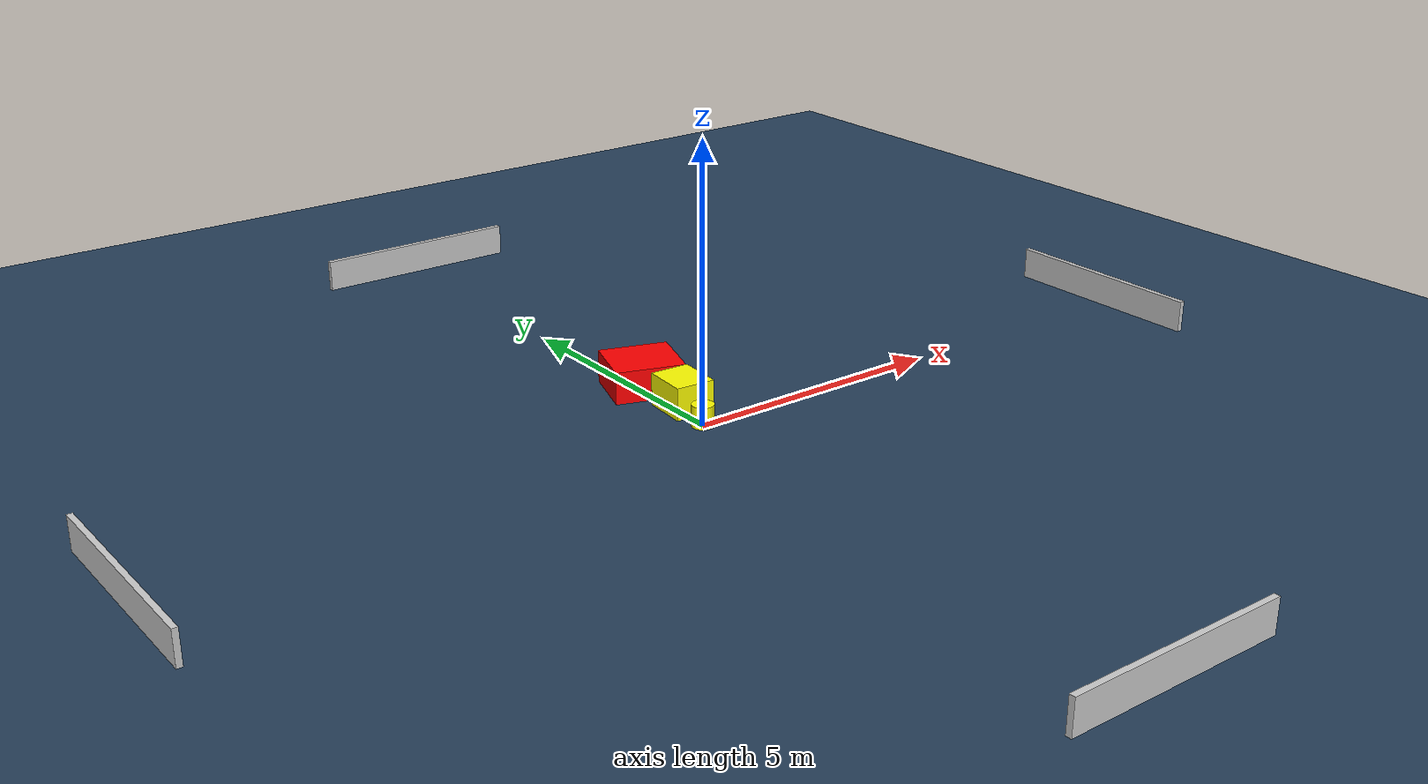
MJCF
<?xml version="1.0" ?>
<mujoco model="generated_environment">
  <option timestep="0.01" integrator="RK4" cone="elliptic"/>
  <default>
    <geom density="1"/>
  </default>
  <asset>
    <texture builtin="gradient" height="3072" name="skybox" rgb1="0.3 0.5 0.7" rgb2="0 0 0" type="skybox" width="512"/>
    <texture builtin="checker" height="300" name="groundplane" rgb1="0.2 0.3 0.4" rgb2="0.1 0.2 0.3" type="2d" width="300"/>
    <material name="groundplane" reflectance="0.2" texrepeat="5 5" texture="groundplane"/>
  </asset>
  <worldbody>
    <light dir="0 0 -1" directional="true" pos="0 0 1.5"/>
    <geom condim="3" friction="0.5 0.005 0.001" material="groundplane" name="floor" pos="0 0 0" size="0 0 0.05" type="plane"/>
    <body name="walls">
      <geom name="wall_1" condim="4" pos="-10.0 0.0 0.3" rgba="0.800000011920929 0.800000011920929 0.800000011920929 1.0" size="0.05 2.0 0.3" type="box"/>
      <geom name="wall_2" condim="4" pos="10.0 0.0 0.3" rgba="0.800000011920929 0.800000011920929 0.800000011920929 1.0" size="0.05 2.0 0.3" type="box"/>
      <geom name="wall_3" condim="4" pos="0.0 -10.0 0.3" rgba="0.800000011920929 0.800000011920929 0.800000011920929 1.0" size="2.0 0.05 0.3" type="box"/>
      <geom name="wall_4" condim="4" pos="0.0 10.0 0.3" rgba="0.800000011920929 0.800000011920929 0.800000011920929 1.0" size="2.0 0.05 0.3" type="box"/>
    </body>
    <body name="robot">
      <joint name="joint_x" type="slide" pos="0 0 0" axis="1 0 0"/>
      <joint name="joint_y" type="slide" pos="0 0 0" axis="0 1 0"/>
      <geom name="robot" type="cylinder" pos="0.0 0.0 0.2" size="0.2 0.2 0.0" mass="5.0" friction="1.0 0.005 0.0001" condim="4" rgba="1.0 1.0 0.0 1.0"/>
    </body>
    <body name="obstacle_1_movable">
      <geom name="obstacle_1_movable" condim="4" pos="0.15905818934066693 0.7943898323429405 0.3" euler="0 0 355.9729657275758" friction="0.0 0.005 0.001" rgba="1.0 1.0 0.0 1.0" size="0.3673616155553227 0.4236207089231891 0.3" type="box" mass="0.1"/>
      <joint type="free"/>
    </body>
    <body name="obstacle_2_static">
      <geom name="obstacle_2_static" condim="4" pos="0.10436525057713845 1.9363995089134047 0.3" euler="0 0 71.69623490466164" friction="0.0 0.005 0.001" rgba="1.0 0.0 0.0 1.0" size="0.5659563801013416 0.639487771768154 0.3" type="box"/>
    </body>
  </worldbody>
  <actuator>
    <motor name="actuator_x" joint="joint_x" gear="1" ctrlrange="-1 1"/>
    <motor name="actuator_y" joint="joint_y" gear="1" ctrlrange="-1 1"/>
  </actuator>
</mujoco>
